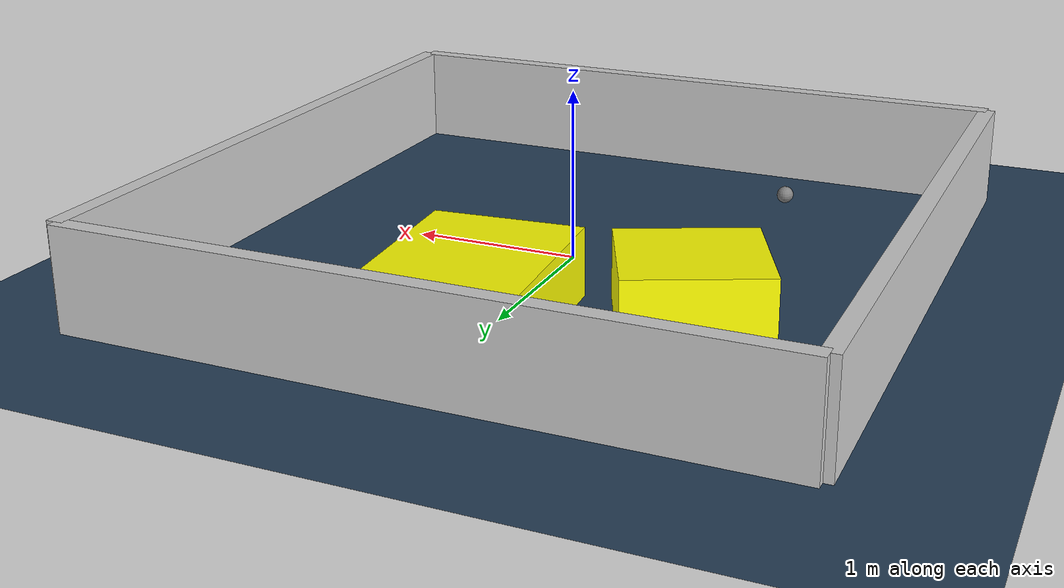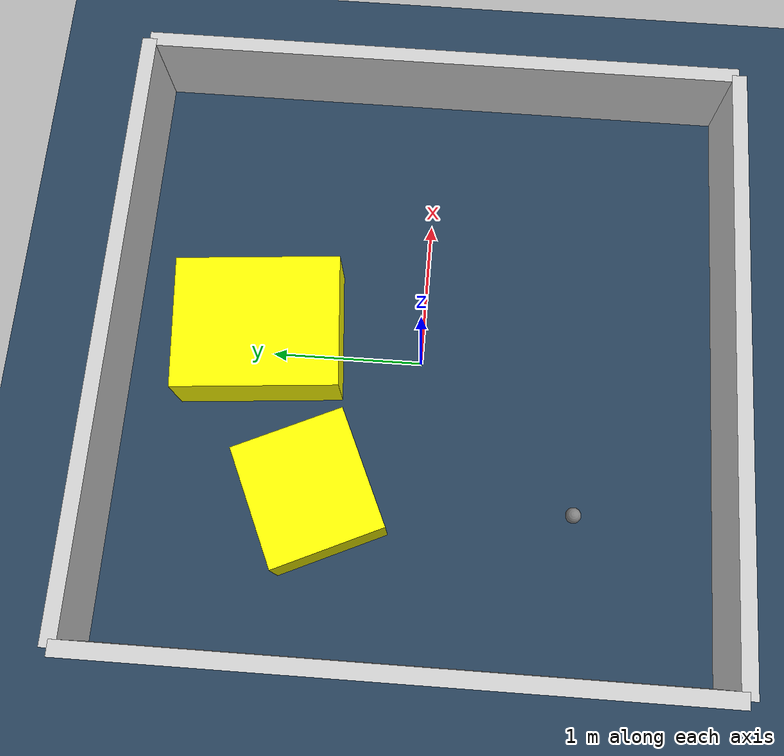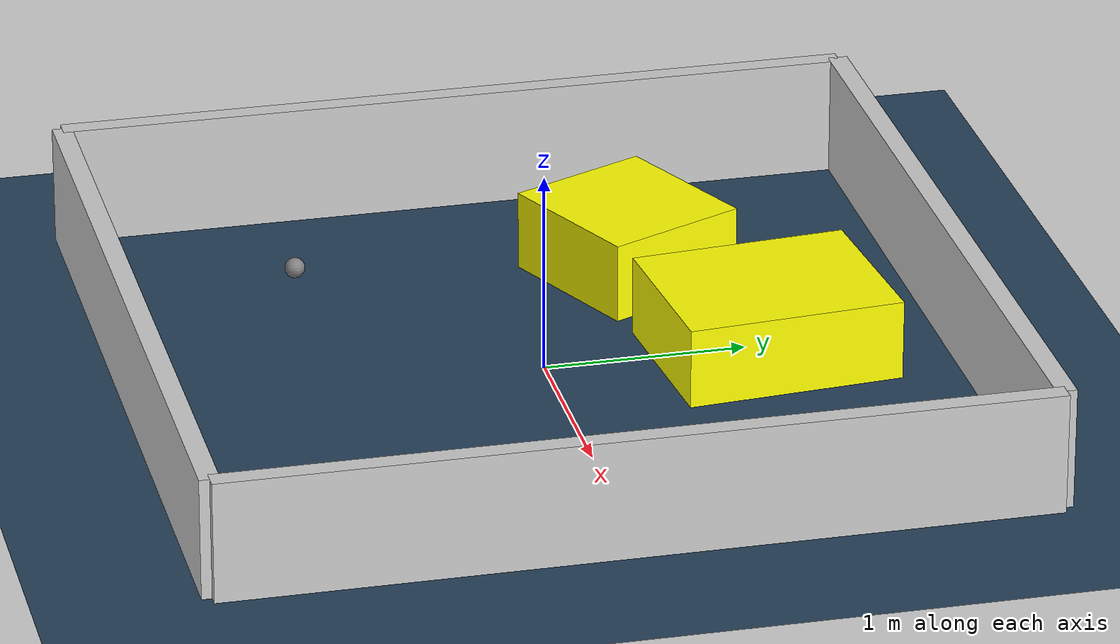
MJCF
<?xml version="1.0" ?>
<mujoco model="generated_environment">
  <option timestep="0.01" integrator="RK4" cone="elliptic"/>
  <default>
    <geom density="1"/>
  </default>
  <asset>
    <texture builtin="gradient" height="3072" rgb1="0.3 0.5 0.7" rgb2="0 0 0" type="skybox" width="512"/>
    <texture builtin="checker" height="300" mark="edge" markrgb="0.8 0.8 0.8" name="groundplane" rgb1="0.2 0.3 0.4" rgb2="0.1 0.2 0.3" type="2d" width="300"/>
    <material name="groundplane" reflectance="0.2" texrepeat="5 5" texture="groundplane" texuniform="true"/>
    <material name="robot" rgba="0.0 1.0 0.0 1"/>
  </asset>
  <worldbody>
    <light dir="0 0 -1" directional="true" pos="0 0 1.5"/>
    <geom condim="4" friction="1.0 0.005 0.001" material="groundplane" name="floor" size="0 0 0.05" type="plane"/>
    <body name="walls">
      <geom name="wall_1" condim="4" pos="-2.0 0.0 0.3" rgba="0.800000011920929 0.800000011920929 0.800000011920929 1.0" size="0.05 2.0 0.3" type="box"/>
      <geom name="wall_2" condim="4" pos="2.0 0.0 0.3" rgba="0.800000011920929 0.800000011920929 0.800000011920929 1.0" size="0.05 2.0 0.3" type="box"/>
      <geom name="wall_3" condim="4" pos="0.0 -2.0 0.3" rgba="0.800000011920929 0.800000011920929 0.800000011920929 1.0" size="2.0 0.05 0.3" type="box"/>
      <geom name="wall_4" condim="4" pos="0.0 2.0 0.3" rgba="0.800000011920929 0.800000011920929 0.800000011920929 1.0" size="2.0 0.05 0.3" type="box"/>
    </body>
    <body name="robot">
      <joint name="joint_x" type="slide" pos="0 0 0" axis="1 0 0"/>
      <joint name="joint_y" type="slide" pos="0 0 0" axis="0 1 0"/>
      <geom name="robot" type="sphere" pos="-0.9724890936711295 -1.0275887711064753 0.2" size="0.05" mass="5." friction="1.0 0.005 0.0001" condim="4"/>
      <site name="sensor_ball"/>
    </body>
    <body name="obstacle_1_movable">
      <geom name="obstacle_1_movable" condim="4" pos="0.10685257119080838 1.0807257161171346 0.2" euler="0 0 184.7047829819458" friction="1.0 0.005 0.001" rgba="1 1 0 1" size="0.43772302370185046 0.5387296434245696 0.2" type="box" mass="0.1"/>
      <joint type="free"/>
    </body>
    <body name="obstacle_2_movable">
      <geom name="obstacle_2_movable" condim="4" pos="-0.9448148955300538 0.6409620122344148 0.2" euler="0 0 294.4183897954746" friction="1.0 0.005 0.001" rgba="1 1 0 1" size="0.3718324941089738 0.400409217313474 0.2" type="box" mass="0.1"/>
      <joint type="free"/>
    </body>
  </worldbody>
  <actuator>
    <motor name="actuator_x" joint="joint_x" gear="1" ctrlrange="-1 1"/>
    <motor name="actuator_y" joint="joint_y" gear="1" ctrlrange="-1 1"/>
  </actuator>
</mujoco>
